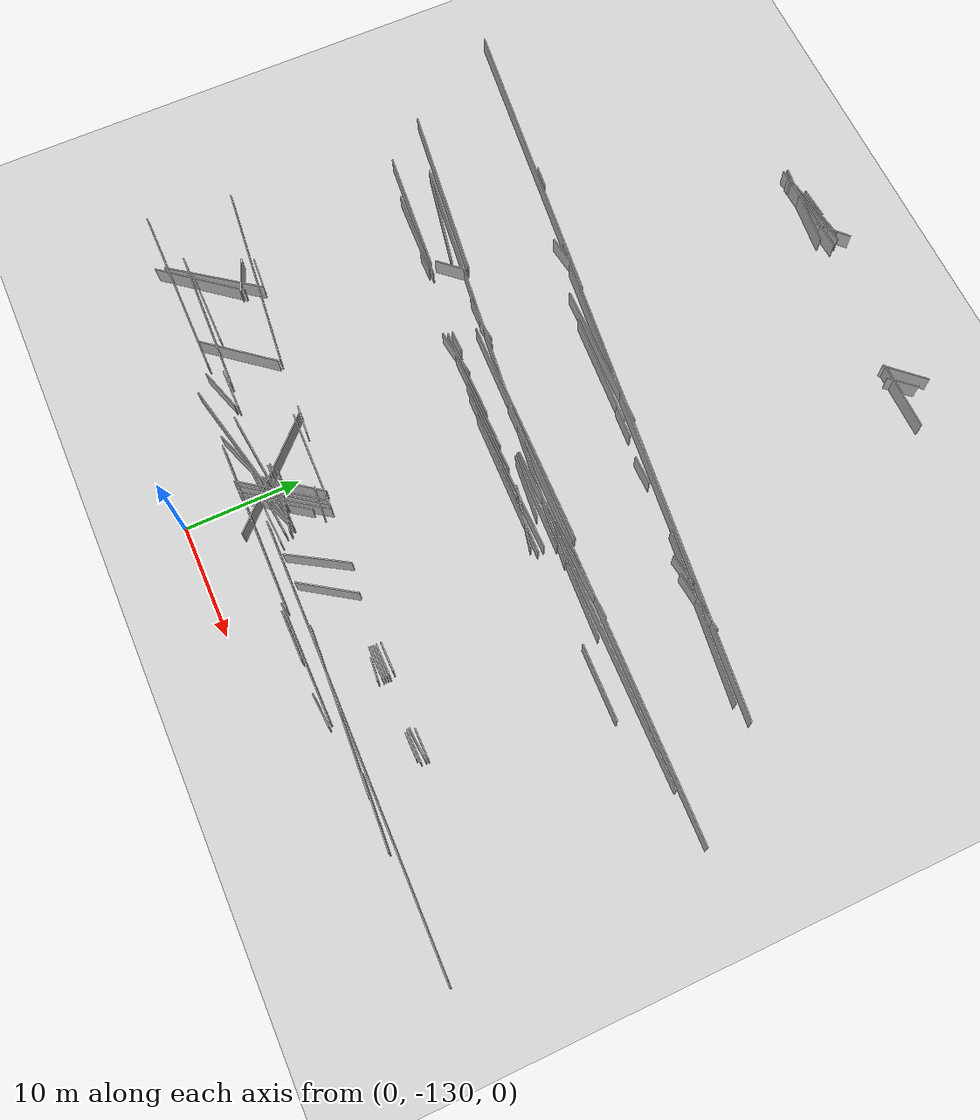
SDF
<sdf version="1.6">
 <world name="slam_world">
  <model name="ground_plane">
   <static>true</static>
   <link name="link">
    <collision name="collision">
     <geometry><plane><normal>0 0 1</normal><size>100 100</size></plane></geometry>
    </collision>
    <visual name="visual">
     <geometry><plane><normal>0 0 1</normal><size>100 100</size></plane></geometry>
     <material>
      <ambient>0.8 0.8 0.8 1</ambient>
      <diffuse>0.8 0.8 0.8 1</diffuse>
      <specular>0.8 0.8 0.8 1</specular>
     </material>
    </visual>
   </link>
  </model>
  <model name="wall_9">
   <static>true</static>
   <pose>0.6999999999999993 -92.3 1.0 0 0 -0.015150355874771107</pose>
   <link name="link">
    <collision name="collision">
     <geometry><box><size>13.201515064567397 0.1 2.0</size></box></geometry>
    </collision>
    <visual name="visual">
     <geometry><box><size>13.201515064567397 0.1 2.0</size></box></geometry>
     <material><ambient>0.5 0.5 0.5 1</ambient><diffuse>0.7 0.7 0.7 1</diffuse></material>
    </visual>
   </link>
  </model>
  <model name="wall_28">
   <static>true</static>
   <pose>24.700000000000003 -94.9 1.0 0 0 -0.12102721980920472</pose>
   <link name="link">
    <collision name="collision">
     <geometry><box><size>14.909057649630318 0.1 2.0</size></box></geometry>
    </collision>
    <visual name="visual">
     <geometry><box><size>14.909057649630318 0.1 2.0</size></box></geometry>
     <material><ambient>0.5 0.5 0.5 1</ambient><diffuse>0.7 0.7 0.7 1</diffuse></material>
    </visual>
   </link>
  </model>
  <model name="wall_33">
   <static>true</static>
   <pose>21.200000000000003 -102.1 1.0 0 0 -0.03551805166373941</pose>
   <link name="link">
    <collision name="collision"><geometry><box><size>39.42486525024531 0.1 2.0</size></box></geometry></collision>
    <visual name="visual">
     <geometry><box><size>39.42486525024531 0.1 2.0</size></box></geometry>
     <material><ambient>0.5 0.5 0.5 1</ambient><diffuse>0.7 0.7 0.7 1</diffuse></material>
    </visual>
   </link>
  </model>
  <model name="wall_39">
   <static>true</static>
   <pose>1.8000000000000043 -92.89999999999999 1.0 0 0 -0.05875582271572212</pose>
   <link name="link">
    <collision name="collision">
     <geometry><box><size>10.217631819555844 0.1 2.0</size></box></geometry>
    </collision>
    <visual name="visual">
     <geometry><box><size>10.217631819555844 0.1 2.0</size></box></geometry>
     <material><ambient>0.5 0.5 0.5 1</ambient><diffuse>0.7 0.7 0.7 1</diffuse></material>
    </visual>
   </link>
  </model>
  <model name="wall_43">
   <static>true</static>
   <pose>-19.8 -89.5 1.0 0 0 -0.10749767402565427</pose>
   <link name="link">
    <collision name="collision"><geometry><box><size>27.96140196771257 0.1 2.0</size></box></geometry></collision>
    <visual name="visual">
     <geometry><box><size>27.96140196771257 0.1 2.0</size></box></geometry>
     <material><ambient>0.5 0.5 0.5 1</ambient><diffuse>0.7 0.7 0.7 1</diffuse></material>
    </visual>
   </link>
  </model>
  <model name="wall_47">
   <static>true</static>
   <pose>0.8999999999999986 -121.6 1.0 0 0 0.9272952180016119</pose>
   <link name="link">
    <collision name="collision"><geometry><box><size>7.999999999999992 0.1 2.0</size></box></geometry></collision>
    <visual name="visual">
     <geometry><box><size>7.999999999999992 0.1 2.0</size></box></geometry>
     <material><ambient>0.5 0.5 0.5 1</ambient><diffuse>0.7 0.7 0.7 1</diffuse></material>
    </visual>
   </link>
  </model>
  <model name="wall_55">
   <static>true</static>
   <pose>26.200000000000003 -104.69999999999999 1.0 0 0 -0.03029375991877556</pose>
   <link name="link">
    <collision name="collision"><geometry><box><size>6.603029607687665 0.1 2.0</size></box></geometry></collision>
    <visual name="visual">
     <geometry><box><size>6.603029607687665 0.1 2.0</size></box></geometry>
     <material><ambient>0.5 0.5 0.5 1</ambient><diffuse>0.7 0.7 0.7 1</diffuse></material>
    </visual>
   </link>
  </model>
  <model name="wall_63">
   <static>true</static>
   <pose>-12.599999999999998 -120.4 1.0 0 0 0.8831250707561676</pose>
   <link name="link">
    <collision name="collision"><geometry><box><size>7.247068372797383 0.1 2.0</size></box></geometry></collision>
    <visual name="visual">
     <geometry><box><size>7.247068372797383 0.1 2.0</size></box></geometry>
     <material><ambient>0.5 0.5 0.5 1</ambient><diffuse>0.7 0.7 0.7 1</diffuse></material>
    </visual>
   </link>
  </model>
  <model name="wall_66">
   <static>true</static>
   <pose>23.6 -94.7 1.0 0 0 0.11065722117389477</pose>
   <link name="link">
    <collision name="collision"><geometry><box><size>5.433231082882441 0.1 2.0</size></box></geometry></collision>
    <visual name="visual">
     <geometry><box><size>5.433231082882441 0.1 2.0</size></box></geometry>
     <material><ambient>0.5 0.5 0.5 1</ambient><diffuse>0.7 0.7 0.7 1</diffuse></material>
    </visual>
   </link>
  </model>
  <model name="wall_84">
   <static>true</static>
   <pose>2.8000000000000007 -124.69999999999999 1.0 0 0 -0.012986282920172669</pose>
   <link name="link">
    <collision name="collision">
     <geometry><box><size>15.401298646542763 0.1 2.0</size></box></geometry>
    </collision>
    <visual name="visual">
     <geometry><box><size>15.401298646542763 0.1 2.0</size></box></geometry>
     <material><ambient>0.5 0.5 0.5 1</ambient><diffuse>0.7 0.7 0.7 1</diffuse></material>
    </visual>
   </link>
  </model>
  <model name="wall_89">
   <static>true</static>
   <pose>7.800000000000004 -92.7 1.0 0 0 -0.10391877869129144</pose>
   <link name="link">
    <collision name="collision"><geometry><box><size>32.77682107831692 0.1 2.0</size></box></geometry></collision>
    <visual name="visual">
     <geometry><box><size>32.77682107831692 0.1 2.0</size></box></geometry>
     <material><ambient>0.5 0.5 0.5 1</ambient><diffuse>0.7 0.7 0.7 1</diffuse></material>
    </visual>
   </link>
  </model>
  <model name="wall_122">
   <static>true</static>
   <pose>6.799999999999997 -104.0 1.0 0 0 0.0</pose>
   <link name="link">
    <collision name="collision"><geometry><box><size>15.0 0.1 2.0</size></box></geometry></collision>
    <visual name="visual">
     <geometry><box><size>15.0 0.1 2.0</size></box></geometry>
     <material><ambient>0.5 0.5 0.5 1</ambient><diffuse>0.7 0.7 0.7 1</diffuse></material>
    </visual>
   </link>
  </model>
  <model name="wall_124">
   <static>true</static>
   <pose>-2.900000000000002 -100.7 1.0 0 0 -0.11922354503950497</pose>
   <link name="link">
    <collision name="collision">
     <geometry><box><size>38.674539428414654 0.1 2.0</size></box></geometry>
    </collision>
    <visual name="visual">
     <geometry><box><size>38.674539428414654 0.1 2.0</size></box></geometry>
     <material><ambient>0.5 0.5 0.5 1</ambient><diffuse>0.7 0.7 0.7 1</diffuse></material>
    </visual>
   </link>
  </model>
  <model name="wall_137">
   <static>true</static>
   <pose>24.1 -102.7 1.0 0 0 -0.02499479361891991</pose>
   <link name="link">
    <collision name="collision">
     <geometry><box><size>24.007498828491084 0.1 2.0</size></box></geometry>
    </collision>
    <visual name="visual">
     <geometry><box><size>24.007498828491084 0.1 2.0</size></box></geometry>
     <material><ambient>0.5 0.5 0.5 1</ambient><diffuse>0.7 0.7 0.7 1</diffuse></material>
    </visual>
   </link>
  </model>
  <model name="wall_146">
   <static>true</static>
   <pose>-0.40000000000000213 -121.5 1.0 0 0 0.07677189126977366</pose>
   <link name="link">
    <collision name="collision"><geometry><box><size>2.60768096208106 0.1 2.0</size></box></geometry></collision>
    <visual name="visual">
     <geometry><box><size>2.60768096208106 0.1 2.0</size></box></geometry>
     <material><ambient>0.5 0.5 0.5 1</ambient><diffuse>0.7 0.7 0.7 1</diffuse></material>
    </visual>
   </link>
  </model>
  <model name="wall_153">
   <static>true</static>
   <pose>22.400000000000002 -123.9 1.0 0 0 -0.015383401780595368</pose>
   <link name="link">
    <collision name="collision"><geometry><box><size>39.00461511154802 0.1 2.0</size></box></geometry></collision>
    <visual name="visual">
     <geometry><box><size>39.00461511154802 0.1 2.0</size></box></geometry>
     <material><ambient>0.5 0.5 0.5 1</ambient><diffuse>0.7 0.7 0.7 1</diffuse></material>
    </visual>
   </link>
  </model>
  <model name="wall_166">
   <static>true</static>
   <pose>-20.2 -119.80000000000001 1.0 0 0 0.9272952180016125</pose>
   <link name="link">
    <collision name="collision"><geometry><box><size>9.000000000000002 0.1 2.0</size></box></geometry></collision>
    <visual name="visual">
     <geometry><box><size>9.000000000000002 0.1 2.0</size></box></geometry>
     <material><ambient>0.5 0.5 0.5 1</ambient><diffuse>0.7 0.7 0.7 1</diffuse></material>
    </visual>
   </link>
  </model>
  <model name="wall_174">
   <static>true</static>
   <pose>-19.4 -117.6 1.0 0 0 -0.3805063771123657</pose>
   <link name="link">
    <collision name="collision">
     <geometry><box><size>3.2310988842807036 0.1 2.0</size></box></geometry>
    </collision>
    <visual name="visual">
     <geometry><box><size>3.2310988842807036 0.1 2.0</size></box></geometry>
     <material><ambient>0.5 0.5 0.5 1</ambient><diffuse>0.7 0.7 0.7 1</diffuse></material>
    </visual>
   </link>
  </model>
  <model name="wall_176">
   <static>true</static>
   <pose>10.300000000000004 -102.8 1.0 0 0 -0.04542327942157767</pose>
   <link name="link">
    <collision name="collision"><geometry><box><size>8.809086218218095 0.1 2.0</size></box></geometry></collision>
    <visual name="visual">
     <geometry><box><size>8.809086218218095 0.1 2.0</size></box></geometry>
     <material><ambient>0.5 0.5 0.5 1</ambient><diffuse>0.7 0.7 0.7 1</diffuse></material>
    </visual>
   </link>
  </model>
  <model name="wall_182">
   <static>true</static>
   <pose>19.400000000000006 -103.0 1.0 0 0 -0.057080782406265414</pose>
   <link name="link">
    <collision name="collision"><geometry><box><size>7.011419257183242 0.1 2.0</size></box></geometry></collision>
    <visual name="visual">
     <geometry><box><size>7.011419257183242 0.1 2.0</size></box></geometry>
     <material><ambient>0.5 0.5 0.5 1</ambient><diffuse>0.7 0.7 0.7 1</diffuse></material>
    </visual>
   </link>
  </model>
  <model name="wall_194">
   <static>true</static>
   <pose>-20.4 -123.2 1.0 0 0 0.0</pose>
   <link name="link">
    <collision name="collision"><geometry><box><size>15.8 0.1 2.0</size></box></geometry></collision>
    <visual name="visual">
     <geometry><box><size>15.8 0.1 2.0</size></box></geometry>
     <material><ambient>0.5 0.5 0.5 1</ambient><diffuse>0.7 0.7 0.7 1</diffuse></material>
    </visual>
   </link>
  </model>
  <model name="wall_206">
   <static>true</static>
   <pose>17.5 -119.4 1.0 0 0 0.0</pose>
   <link name="link">
    <collision name="collision">
     <geometry><box><size>2.8000000000000114 0.1 2.0</size></box></geometry>
    </collision>
    <visual name="visual">
     <geometry><box><size>2.8000000000000114 0.1 2.0</size></box></geometry>
     <material><ambient>0.5 0.5 0.5 1</ambient><diffuse>0.7 0.7 0.7 1</diffuse></material>
    </visual>
   </link>
  </model>
  <model name="wall_207">
   <static>true</static>
   <pose>-9.5 -122.2 1.0 0 0 0.0</pose>
   <link name="link">
    <collision name="collision">
     <geometry><box><size>3.5999999999999943 0.1 2.0</size></box></geometry>
    </collision>
    <visual name="visual">
     <geometry><box><size>3.5999999999999943 0.1 2.0</size></box></geometry>
     <material><ambient>0.5 0.5 0.5 1</ambient><diffuse>0.7 0.7 0.7 1</diffuse></material>
    </visual>
   </link>
  </model>
  <model name="wall_223">
   <static>true</static>
   <pose>24.800000000000004 -119.2 1.0 0 0 0.0</pose>
   <link name="link">
    <collision name="collision">
     <geometry><box><size>2.6000000000000085 0.1 2.0</size></box></geometry>
    </collision>
    <visual name="visual">
     <geometry><box><size>2.6000000000000085 0.1 2.0</size></box></geometry>
     <material><ambient>0.5 0.5 0.5 1</ambient><diffuse>0.7 0.7 0.7 1</diffuse></material>
    </visual>
   </link>
  </model>
  <model name="wall_268">
   <static>true</static>
   <pose>-10.0 -91.0 1.0 0 0 0.1526493283952623</pose>
   <link name="link">
    <collision name="collision">
     <geometry><box><size>2.6305892875931742 0.1 2.0</size></box></geometry>
    </collision>
    <visual name="visual">
     <geometry><box><size>2.6305892875931742 0.1 2.0</size></box></geometry>
     <material><ambient>0.5 0.5 0.5 1</ambient><diffuse>0.7 0.7 0.7 1</diffuse></material>
    </visual>
   </link>
  </model>
  <model name="wall_289">
   <static>true</static>
   <pose>-16.6 -121.8 1.0 0 0 -0.030759526070469667</pose>
   <link name="link">
    <collision name="collision">
     <geometry><box><size>13.006152390311287 0.1 2.0</size></box></geometry>
    </collision>
    <visual name="visual">
     <geometry><box><size>13.006152390311287 0.1 2.0</size></box></geometry>
     <material><ambient>0.5 0.5 0.5 1</ambient><diffuse>0.7 0.7 0.7 1</diffuse></material>
    </visual>
   </link>
  </model>
  <model name="wall_295">
   <static>true</static>
   <pose>-19.1 -116.1 1.0 0 0 -0.0713074647852914</pose>
   <link name="link">
    <collision name="collision"><geometry><box><size>2.807133769523637 0.1 2.0</size></box></geometry></collision>
    <visual name="visual">
     <geometry><box><size>2.807133769523637 0.1 2.0</size></box></geometry>
     <material><ambient>0.5 0.5 0.5 1</ambient><diffuse>0.7 0.7 0.7 1</diffuse></material>
    </visual>
   </link>
  </model>
  <model name="wall_308">
   <static>true</static>
   <pose>4.400000000000002 -101.4 1.0 0 0 -0.03807682558980325</pose>
   <link name="link">
    <collision name="collision"><geometry><box><size>21.01523257068549 0.1 2.0</size></box></geometry></collision>
    <visual name="visual">
     <geometry><box><size>21.01523257068549 0.1 2.0</size></box></geometry>
     <material><ambient>0.5 0.5 0.5 1</ambient><diffuse>0.7 0.7 0.7 1</diffuse></material>
    </visual>
   </link>
  </model>
  <model name="wall_316">
   <static>true</static>
   <pose>-4.399999999999999 -68.9 1.0 0 0 0.14189705460416394</pose>
   <link name="link">
    <collision name="collision">
     <geometry><box><size>7.0710678118654755 0.1 2.0</size></box></geometry>
    </collision>
    <visual name="visual">
     <geometry><box><size>7.0710678118654755 0.1 2.0</size></box></geometry>
     <material><ambient>0.5 0.5 0.5 1</ambient><diffuse>0.7 0.7 0.7 1</diffuse></material>
    </visual>
   </link>
  </model>
  <model name="wall_320">
   <static>true</static>
   <pose>17.4 -119.0 1.0 0 0 0.0</pose>
   <link name="link">
    <collision name="collision">
     <geometry><box><size>2.6000000000000085 0.1 2.0</size></box></geometry>
    </collision>
    <visual name="visual">
     <geometry><box><size>2.6000000000000085 0.1 2.0</size></box></geometry>
     <material><ambient>0.5 0.5 0.5 1</ambient><diffuse>0.7 0.7 0.7 1</diffuse></material>
    </visual>
   </link>
  </model>
  <model name="wall_339">
   <static>true</static>
   <pose>-4.400000000000002 -117.69999999999999 1.0 0 0 -0.07677189126977908</pose>
   <link name="link">
    <collision name="collision">
     <geometry><box><size>2.6076809620810613 0.1 2.0</size></box></geometry>
    </collision>
    <visual name="visual">
     <geometry><box><size>2.6076809620810613 0.1 2.0</size></box></geometry>
     <material><ambient>0.5 0.5 0.5 1</ambient><diffuse>0.7 0.7 0.7 1</diffuse></material>
    </visual>
   </link>
  </model>
  <model name="wall_348">
   <static>true</static>
   <pose>-2.099999999999998 -122.3 1.0 0 0 0.10379234045704282</pose>
   <link name="link">
    <collision name="collision"><geometry><box><size>9.651942809610924 0.1 2.0</size></box></geometry></collision>
    <visual name="visual">
     <geometry><box><size>9.651942809610924 0.1 2.0</size></box></geometry>
     <material><ambient>0.5 0.5 0.5 1</ambient><diffuse>0.7 0.7 0.7 1</diffuse></material>
    </visual>
   </link>
  </model>
  <model name="wall_370">
   <static>true</static>
   <pose>-4.699999999999999 -103.5 1.0 0 0 0.1355277139854995</pose>
   <link name="link">
    <collision name="collision"><geometry><box><size>4.440720662234901 0.1 2.0</size></box></geometry></collision>
    <visual name="visual">
     <geometry><box><size>4.440720662234901 0.1 2.0</size></box></geometry>
     <material><ambient>0.5 0.5 0.5 1</ambient><diffuse>0.7 0.7 0.7 1</diffuse></material>
    </visual>
   </link>
  </model>
  <model name="wall_372">
   <static>true</static>
   <pose>-1.7000000000000028 -123.0 1.0 0 0 0.33667481938672844</pose>
   <link name="link">
    <collision name="collision"><geometry><box><size>8.47584804016684 0.1 2.0</size></box></geometry></collision>
    <visual name="visual">
     <geometry><box><size>8.47584804016684 0.1 2.0</size></box></geometry>
     <material><ambient>0.5 0.5 0.5 1</ambient><diffuse>0.7 0.7 0.7 1</diffuse></material>
    </visual>
   </link>
  </model>
  <model name="wall_401">
   <static>true</static>
   <pose>-17.9 -99.30000000000001 1.0 0 0 -0.19321148384780568</pose>
   <link name="link">
    <collision name="collision"><geometry><box><size>9.374433316206375 0.1 2.0</size></box></geometry></collision>
    <visual name="visual">
     <geometry><box><size>9.374433316206375 0.1 2.0</size></box></geometry>
     <material><ambient>0.5 0.5 0.5 1</ambient><diffuse>0.7 0.7 0.7 1</diffuse></material>
    </visual>
   </link>
  </model>
  <model name="wall_408">
   <static>true</static>
   <pose>0.10000000000000142 -103.6 1.0 0 0 0.0</pose>
   <link name="link">
    <collision name="collision"><geometry><box><size>9.200000000000003 0.1 2.0</size></box></geometry></collision>
    <visual name="visual">
     <geometry><box><size>9.200000000000003 0.1 2.0</size></box></geometry>
     <material><ambient>0.5 0.5 0.5 1</ambient><diffuse>0.7 0.7 0.7 1</diffuse></material>
    </visual>
   </link>
  </model>
  <model name="wall_411">
   <static>true</static>
   <pose>10.200000000000003 -121.2 1.0 0 0 0.9723774333163601</pose>
   <link name="link">
    <collision name="collision"><geometry><box><size>5.325410782277744 0.1 2.0</size></box></geometry></collision>
    <visual name="visual">
     <geometry><box><size>5.325410782277744 0.1 2.0</size></box></geometry>
     <material><ambient>0.5 0.5 0.5 1</ambient><diffuse>0.7 0.7 0.7 1</diffuse></material>
    </visual>
   </link>
  </model>
  <model name="wall_415">
   <static>true</static>
   <pose>1.3000000000000007 -121.6 1.0 0 0 0.9272952180016112</pose>
   <link name="link">
    <collision name="collision"><geometry><box><size>7.999999999999996 0.1 2.0</size></box></geometry></collision>
    <visual name="visual">
     <geometry><box><size>7.999999999999996 0.1 2.0</size></box></geometry>
     <material><ambient>0.5 0.5 0.5 1</ambient><diffuse>0.7 0.7 0.7 1</diffuse></material>
    </visual>
   </link>
  </model>
  <model name="wall_429">
   <static>true</static>
   <pose>-5.300000000000001 -69.4 1.0 0 0 -0.1048769387302335</pose>
   <link name="link">
    <collision name="collision"><geometry><box><size>7.641989269817121 0.1 2.0</size></box></geometry></collision>
    <visual name="visual">
     <geometry><box><size>7.641989269817121 0.1 2.0</size></box></geometry>
     <material><ambient>0.5 0.5 0.5 1</ambient><diffuse>0.7 0.7 0.7 1</diffuse></material>
    </visual>
   </link>
  </model>
  <model name="wall_438">
   <static>true</static>
   <pose>13.800000000000004 -102.2 1.0 0 0 0.025311049142848676</pose>
   <link name="link">
    <collision name="collision">
     <geometry><box><size>15.805062480104276 0.1 2.0</size></box></geometry>
    </collision>
    <visual name="visual">
     <geometry><box><size>15.805062480104276 0.1 2.0</size></box></geometry>
     <material><ambient>0.5 0.5 0.5 1</ambient><diffuse>0.7 0.7 0.7 1</diffuse></material>
    </visual>
   </link>
  </model>
  <model name="wall_439">
   <static>true</static>
   <pose>11.600000000000001 -93.8 1.0 0 0 0.0</pose>
   <link name="link">
    <collision name="collision">
     <geometry><box><size>2.6000000000000085 0.1 2.0</size></box></geometry>
    </collision>
    <visual name="visual">
     <geometry><box><size>2.6000000000000085 0.1 2.0</size></box></geometry>
     <material><ambient>0.5 0.5 0.5 1</ambient><diffuse>0.7 0.7 0.7 1</diffuse></material>
    </visual>
   </link>
  </model>
  <model name="wall_443">
   <static>true</static>
   <pose>-16.900000000000002 -102.0 1.0 0 0 -0.047583103276984076</pose>
   <link name="link">
    <collision name="collision"><geometry><box><size>8.409518416651455 0.1 2.0</size></box></geometry></collision>
    <visual name="visual">
     <geometry><box><size>8.409518416651455 0.1 2.0</size></box></geometry>
     <material><ambient>0.5 0.5 0.5 1</ambient><diffuse>0.7 0.7 0.7 1</diffuse></material>
    </visual>
   </link>
  </model>
  <model name="wall_449">
   <static>true</static>
   <pose>19.700000000000003 -124.0 1.0 0 0 -0.0554985052457176</pose>
   <link name="link">
    <collision name="collision">
     <geometry><box><size>14.422205101855964 0.1 2.0</size></box></geometry>
    </collision>
    <visual name="visual">
     <geometry><box><size>14.422205101855964 0.1 2.0</size></box></geometry>
     <material><ambient>0.5 0.5 0.5 1</ambient><diffuse>0.7 0.7 0.7 1</diffuse></material>
    </visual>
   </link>
  </model>
  <model name="wall_477">
   <static>true</static>
   <pose>3.1999999999999993 -123.30000000000001 1.0 0 0 0.05258306161094241</pose>
   <link name="link">
    <collision name="collision"><geometry><box><size>3.805259518088094 0.1 2.0</size></box></geometry></collision>
    <visual name="visual">
     <geometry><box><size>3.805259518088094 0.1 2.0</size></box></geometry>
     <material><ambient>0.5 0.5 0.5 1</ambient><diffuse>0.7 0.7 0.7 1</diffuse></material>
    </visual>
   </link>
  </model>
  <model name="wall_483">
   <static>true</static>
   <pose>-9.8 -123.0 1.0 0 0 0.3058788714048491</pose>
   <link name="link">
    <collision name="collision">
     <geometry><box><size>3.9849717690342557 0.1 2.0</size></box></geometry>
    </collision>
    <visual name="visual">
     <geometry><box><size>3.9849717690342557 0.1 2.0</size></box></geometry>
     <material><ambient>0.5 0.5 0.5 1</ambient><diffuse>0.7 0.7 0.7 1</diffuse></material>
    </visual>
   </link>
  </model>
  <model name="wall_492">
   <static>true</static>
   <pose>-18.9 -116.5 1.0 0 0 -0.10427161192765595</pose>
   <link name="link">
    <collision name="collision">
     <geometry><box><size>17.293929570806057 0.1 2.0</size></box></geometry>
    </collision>
    <visual name="visual">
     <geometry><box><size>17.293929570806057 0.1 2.0</size></box></geometry>
     <material><ambient>0.5 0.5 0.5 1</ambient><diffuse>0.7 0.7 0.7 1</diffuse></material>
    </visual>
   </link>
  </model>
  <model name="wall_497">
   <static>true</static>
   <pose>-5.700000000000003 -100.30000000000001 1.0 0 0 0.09966865249116344</pose>
   <link name="link">
    <collision name="collision">
     <geometry><box><size>2.0099751242241783 0.1 2.0</size></box></geometry>
    </collision>
    <visual name="visual">
     <geometry><box><size>2.0099751242241783 0.1 2.0</size></box></geometry>
     <material><ambient>0.5 0.5 0.5 1</ambient><diffuse>0.7 0.7 0.7 1</diffuse></material>
    </visual>
   </link>
  </model>
  <model name="wall_505">
   <static>true</static>
   <pose>-0.40000000000000213 -121.8 1.0 0 0 0.0</pose>
   <link name="link">
    <collision name="collision">
     <geometry><box><size>2.6000000000000014 0.1 2.0</size></box></geometry>
    </collision>
    <visual name="visual">
     <geometry><box><size>2.6000000000000014 0.1 2.0</size></box></geometry>
     <material><ambient>0.5 0.5 0.5 1</ambient><diffuse>0.7 0.7 0.7 1</diffuse></material>
    </visual>
   </link>
  </model>
  <model name="wall_508">
   <static>true</static>
   <pose>-20.0 -98.19999999999999 1.0 0 0 -0.12283523887789584</pose>
   <link name="link">
    <collision name="collision"><geometry><box><size>16.32298992219257 0.1 2.0</size></box></geometry></collision>
    <visual name="visual">
     <geometry><box><size>16.32298992219257 0.1 2.0</size></box></geometry>
     <material><ambient>0.5 0.5 0.5 1</ambient><diffuse>0.7 0.7 0.7 1</diffuse></material>
    </visual>
   </link>
  </model>
  <model name="wall_543">
   <static>true</static>
   <pose>-20.5 -121.0 1.0 0 0 0.8884797719201487</pose>
   <link name="link">
    <collision name="collision"><geometry><box><size>8.246211251235327 0.1 2.0</size></box></geometry></collision>
    <visual name="visual">
     <geometry><box><size>8.246211251235327 0.1 2.0</size></box></geometry>
     <material><ambient>0.5 0.5 0.5 1</ambient><diffuse>0.7 0.7 0.7 1</diffuse></material>
    </visual>
   </link>
  </model>
  <model name="wall_561">
   <static>true</static>
   <pose>20.700000000000003 -94.6 1.0 0 0 0.14189705460416038</pose>
   <link name="link">
    <collision name="collision"><geometry><box><size>2.8284271247462 0.1 2.0</size></box></geometry></collision>
    <visual name="visual">
     <geometry><box><size>2.8284271247462 0.1 2.0</size></box></geometry>
     <material><ambient>0.5 0.5 0.5 1</ambient><diffuse>0.7 0.7 0.7 1</diffuse></material>
    </visual>
   </link>
  </model>
  <model name="wall_562">
   <static>true</static>
   <pose>-19.3 -101.5 1.0 0 0 -0.08904958263449783</pose>
   <link name="link">
    <collision name="collision">
     <geometry><box><size>11.244554237496473 0.1 2.0</size></box></geometry>
    </collision>
    <visual name="visual">
     <geometry><box><size>11.244554237496473 0.1 2.0</size></box></geometry>
     <material><ambient>0.5 0.5 0.5 1</ambient><diffuse>0.7 0.7 0.7 1</diffuse></material>
    </visual>
   </link>
  </model>
  <model name="wall_566">
   <static>true</static>
   <pose>7.599999999999994 -121.0 1.0 0 0 1.0121970114513352</pose>
   <link name="link">
    <collision name="collision">
     <geometry><box><size>5.6603886792339715 0.1 2.0</size></box></geometry>
    </collision>
    <visual name="visual">
     <geometry><box><size>5.6603886792339715 0.1 2.0</size></box></geometry>
     <material><ambient>0.5 0.5 0.5 1</ambient><diffuse>0.7 0.7 0.7 1</diffuse></material>
    </visual>
   </link>
  </model>
  <model name="wall_571">
   <static>true</static>
   <pose>7.0 -93.3 1.0 0 0 -0.06656816377582947</pose>
   <link name="link">
    <collision name="collision">
     <geometry><box><size>3.0066592756745827 0.1 2.0</size></box></geometry>
    </collision>
    <visual name="visual">
     <geometry><box><size>3.0066592756745827 0.1 2.0</size></box></geometry>
     <material><ambient>0.5 0.5 0.5 1</ambient><diffuse>0.7 0.7 0.7 1</diffuse></material>
    </visual>
   </link>
  </model>
  <model name="wall_573">
   <static>true</static>
   <pose>11.600000000000001 -93.0 1.0 0 0 -0.10721065678060993</pose>
   <link name="link">
    <collision name="collision"><geometry><box><size>44.85755231842238 0.1 2.0</size></box></geometry></collision>
    <visual name="visual">
     <geometry><box><size>44.85755231842238 0.1 2.0</size></box></geometry>
     <material><ambient>0.5 0.5 0.5 1</ambient><diffuse>0.7 0.7 0.7 1</diffuse></material>
    </visual>
   </link>
  </model>
  <model name="wall_605">
   <static>true</static>
   <pose>24.700000000000003 -119.8 1.0 0 0 0.0</pose>
   <link name="link">
    <collision name="collision">
     <geometry><box><size>2.8000000000000114 0.1 2.0</size></box></geometry>
    </collision>
    <visual name="visual">
     <geometry><box><size>2.8000000000000114 0.1 2.0</size></box></geometry>
     <material><ambient>0.5 0.5 0.5 1</ambient><diffuse>0.7 0.7 0.7 1</diffuse></material>
    </visual>
   </link>
  </model>
  <model name="wall_610">
   <static>true</static>
   <pose>14.600000000000001 -70.8 1.0 0 0 0.0</pose>
   <link name="link">
    <collision name="collision"><geometry><box><size>6.200000000000003 0.1 2.0</size></box></geometry></collision>
    <visual name="visual">
     <geometry><box><size>6.200000000000003 0.1 2.0</size></box></geometry>
     <material><ambient>0.5 0.5 0.5 1</ambient><diffuse>0.7 0.7 0.7 1</diffuse></material>
    </visual>
   </link>
  </model>
  <model name="wall_613">
   <static>true</static>
   <pose>0.6000000000000014 -120.7 1.0 0 0 0.9209258773829494</pose>
   <link name="link">
    <collision name="collision"><geometry><box><size>6.280127387243031 0.1 2.0</size></box></geometry></collision>
    <visual name="visual">
     <geometry><box><size>6.280127387243031 0.1 2.0</size></box></geometry>
     <material><ambient>0.5 0.5 0.5 1</ambient><diffuse>0.7 0.7 0.7 1</diffuse></material>
    </visual>
   </link>
  </model>
  <model name="wall_622">
   <static>true</static>
   <pose>12.899999999999999 -69.5 1.0 0 0 0.8198672643969568</pose>
   <link name="link">
    <collision name="collision"><geometry><box><size>4.103656905736636 0.1 2.0</size></box></geometry></collision>
    <visual name="visual">
     <geometry><box><size>4.103656905736636 0.1 2.0</size></box></geometry>
     <material><ambient>0.5 0.5 0.5 1</ambient><diffuse>0.7 0.7 0.7 1</diffuse></material>
    </visual>
   </link>
  </model>
  <model name="wall_627">
   <static>true</static>
   <pose>24.6 -120.0 1.0 0 0 0.0</pose>
   <link name="link">
    <collision name="collision"><geometry><box><size>2.200000000000003 0.1 2.0</size></box></geometry></collision>
    <visual name="visual">
     <geometry><box><size>2.200000000000003 0.1 2.0</size></box></geometry>
     <material><ambient>0.5 0.5 0.5 1</ambient><diffuse>0.7 0.7 0.7 1</diffuse></material>
    </visual>
   </link>
  </model>
  <model name="wall_628">
   <static>true</static>
   <pose>-2.6000000000000014 -103.4 1.0 0 0 0.0</pose>
   <link name="link">
    <collision name="collision"><geometry><box><size>8.200000000000003 0.1 2.0</size></box></geometry></collision>
    <visual name="visual">
     <geometry><box><size>8.200000000000003 0.1 2.0</size></box></geometry>
     <material><ambient>0.5 0.5 0.5 1</ambient><diffuse>0.7 0.7 0.7 1</diffuse></material>
    </visual>
   </link>
  </model>
  <model name="wall_658">
   <static>true</static>
   <pose>-5.300000000000001 -68.8 1.0 0 0 0.15660187698201752</pose>
   <link name="link">
    <collision name="collision"><geometry><box><size>7.694153624668542 0.1 2.0</size></box></geometry></collision>
    <visual name="visual">
     <geometry><box><size>7.694153624668542 0.1 2.0</size></box></geometry>
     <material><ambient>0.5 0.5 0.5 1</ambient><diffuse>0.7 0.7 0.7 1</diffuse></material>
    </visual>
   </link>
  </model>
  <model name="wall_660">
   <static>true</static>
   <pose>1.8000000000000007 -121.7 1.0 0 0 -0.18311081726248418</pose>
   <link name="link">
    <collision name="collision"><geometry><box><size>5.491812087098391 0.1 2.0</size></box></geometry></collision>
    <visual name="visual">
     <geometry><box><size>5.491812087098391 0.1 2.0</size></box></geometry>
     <material><ambient>0.5 0.5 0.5 1</ambient><diffuse>0.7 0.7 0.7 1</diffuse></material>
    </visual>
   </link>
  </model>
  <model name="wall_665">
   <static>true</static>
   <pose>1.3999999999999986 -122.9 1.0 0 0 0.09647377518258822</pose>
   <link name="link">
    <collision name="collision"><geometry><box><size>6.228964600958979 0.1 2.0</size></box></geometry></collision>
    <visual name="visual">
     <geometry><box><size>6.228964600958979 0.1 2.0</size></box></geometry>
     <material><ambient>0.5 0.5 0.5 1</ambient><diffuse>0.7 0.7 0.7 1</diffuse></material>
    </visual>
   </link>
  </model>
  <model name="wall_680">
   <static>true</static>
   <pose>-14.100000000000001 -102.4 1.0 0 0 0.0</pose>
   <link name="link">
    <collision name="collision"><geometry><box><size>2.0 0.1 2.0</size></box></geometry></collision>
    <visual name="visual">
     <geometry><box><size>2.0 0.1 2.0</size></box></geometry>
     <material><ambient>0.5 0.5 0.5 1</ambient><diffuse>0.7 0.7 0.7 1</diffuse></material>
    </visual>
   </link>
  </model>
  <model name="wall_699">
   <static>true</static>
   <pose>13.600000000000001 -70.19999999999999 1.0 0 0 0.8379812250083908</pose>
   <link name="link">
    <collision name="collision"><geometry><box><size>2.69072480941474 0.1 2.0</size></box></geometry></collision>
    <visual name="visual">
     <geometry><box><size>2.69072480941474 0.1 2.0</size></box></geometry>
     <material><ambient>0.5 0.5 0.5 1</ambient><diffuse>0.7 0.7 0.7 1</diffuse></material>
    </visual>
   </link>
  </model>
  <model name="wall_750">
   <static>true</static>
   <pose>-1.0 -121.69999999999999 1.0 0 0 -0.7853981633974483</pose>
   <link name="link">
    <collision name="collision">
     <geometry><box><size>11.596551211459383 0.1 2.0</size></box></geometry>
    </collision>
    <visual name="visual">
     <geometry><box><size>11.596551211459383 0.1 2.0</size></box></geometry>
     <material><ambient>0.5 0.5 0.5 1</ambient><diffuse>0.7 0.7 0.7 1</diffuse></material>
    </visual>
   </link>
  </model>
  <model name="wall_759">
   <static>true</static>
   <pose>17.5 -119.6 1.0 0 0 0.0</pose>
   <link name="link">
    <collision name="collision">
     <geometry><box><size>2.8000000000000114 0.1 2.0</size></box></geometry>
    </collision>
    <visual name="visual">
     <geometry><box><size>2.8000000000000114 0.1 2.0</size></box></geometry>
     <material><ambient>0.5 0.5 0.5 1</ambient><diffuse>0.7 0.7 0.7 1</diffuse></material>
    </visual>
   </link>
  </model>
  <model name="wall_790">
   <static>true</static>
   <pose>-17.7 -121.4 1.0 0 0 0.0</pose>
   <link name="link">
    <collision name="collision"><geometry><box><size>6.800000000000004 0.1 2.0</size></box></geometry></collision>
    <visual name="visual">
     <geometry><box><size>6.800000000000004 0.1 2.0</size></box></geometry>
     <material><ambient>0.5 0.5 0.5 1</ambient><diffuse>0.7 0.7 0.7 1</diffuse></material>
    </visual>
   </link>
  </model>
  <model name="wall_800">
   <static>true</static>
   <pose>24.700000000000003 -119.5 1.0 0 0 0.071307464785286</pose>
   <link name="link">
    <collision name="collision">
     <geometry><box><size>2.8071337695236505 0.1 2.0</size></box></geometry>
    </collision>
    <visual name="visual">
     <geometry><box><size>2.8071337695236505 0.1 2.0</size></box></geometry>
     <material><ambient>0.5 0.5 0.5 1</ambient><diffuse>0.7 0.7 0.7 1</diffuse></material>
    </visual>
   </link>
  </model>
  <model name="wall_812">
   <static>true</static>
   <pose>1.8000000000000007 -121.6 1.0 0 0 0.9475969968608299</pose>
   <link name="link">
    <collision name="collision"><geometry><box><size>7.881624198095206 0.1 2.0</size></box></geometry></collision>
    <visual name="visual">
     <geometry><box><size>7.881624198095206 0.1 2.0</size></box></geometry>
     <material><ambient>0.5 0.5 0.5 1</ambient><diffuse>0.7 0.7 0.7 1</diffuse></material>
    </visual>
   </link>
  </model>
  <model name="wall_819">
   <static>true</static>
   <pose>-6.600000000000001 -100.30000000000001 1.0 0 0 -0.039978687123290606</pose>
   <link name="link">
    <collision name="collision">
     <geometry><box><size>5.0039984012787215 0.1 2.0</size></box></geometry>
    </collision>
    <visual name="visual">
     <geometry><box><size>5.0039984012787215 0.1 2.0</size></box></geometry>
     <material><ambient>0.5 0.5 0.5 1</ambient><diffuse>0.7 0.7 0.7 1</diffuse></material>
    </visual>
   </link>
  </model>
  <model name="wall_827">
   <static>true</static>
   <pose>6.300000000000001 -104.2 1.0 0 0 0.0</pose>
   <link name="link">
    <collision name="collision"><geometry><box><size>6.399999999999999 0.1 2.0</size></box></geometry></collision>
    <visual name="visual">
     <geometry><box><size>6.399999999999999 0.1 2.0</size></box></geometry>
     <material><ambient>0.5 0.5 0.5 1</ambient><diffuse>0.7 0.7 0.7 1</diffuse></material>
    </visual>
   </link>
  </model>
  <model name="wall_831">
   <static>true</static>
   <pose>11.200000000000003 -104.4 1.0 0 0 -0.21866894587394223</pose>
   <link name="link">
    <collision name="collision"><geometry><box><size>5.531726674375738 0.1 2.0</size></box></geometry></collision>
    <visual name="visual">
     <geometry><box><size>5.531726674375738 0.1 2.0</size></box></geometry>
     <material><ambient>0.5 0.5 0.5 1</ambient><diffuse>0.7 0.7 0.7 1</diffuse></material>
    </visual>
   </link>
  </model>
  <model name="wall_875">
   <static>true</static>
   <pose>-3.5 -123.3 1.0 0 0 0.21711131473490528</pose>
   <link name="link">
    <collision name="collision">
     <geometry><box><size>13.926952286842942 0.1 2.0</size></box></geometry>
    </collision>
    <visual name="visual">
     <geometry><box><size>13.926952286842942 0.1 2.0</size></box></geometry>
     <material><ambient>0.5 0.5 0.5 1</ambient><diffuse>0.7 0.7 0.7 1</diffuse></material>
    </visual>
   </link>
  </model>
  <model name="wall_878">
   <static>true</static>
   <pose>12.700000000000003 -125.2 1.0 0 0 0.0</pose>
   <link name="link">
    <collision name="collision"><geometry><box><size>4.400000000000006 0.1 2.0</size></box></geometry></collision>
    <visual name="visual">
     <geometry><box><size>4.400000000000006 0.1 2.0</size></box></geometry>
     <material><ambient>0.5 0.5 0.5 1</ambient><diffuse>0.7 0.7 0.7 1</diffuse></material>
    </visual>
   </link>
  </model>
  <model name="wall_883">
   <static>true</static>
   <pose>3.0 -119.1 1.0 0 0 -0.07677189126977929</pose>
   <link name="link">
    <collision name="collision"><geometry><box><size>2.607680962081054 0.1 2.0</size></box></geometry></collision>
    <visual name="visual">
     <geometry><box><size>2.607680962081054 0.1 2.0</size></box></geometry>
     <material><ambient>0.5 0.5 0.5 1</ambient><diffuse>0.7 0.7 0.7 1</diffuse></material>
    </visual>
   </link>
  </model>
  <model name="wall_903">
   <static>true</static>
   <pose>17.5 -119.8 1.0 0 0 0.0</pose>
   <link name="link">
    <collision name="collision">
     <geometry><box><size>2.8000000000000114 0.1 2.0</size></box></geometry>
    </collision>
    <visual name="visual">
     <geometry><box><size>2.8000000000000114 0.1 2.0</size></box></geometry>
     <material><ambient>0.5 0.5 0.5 1</ambient><diffuse>0.7 0.7 0.7 1</diffuse></material>
    </visual>
   </link>
  </model>
  <model name="wall_909">
   <static>true</static>
   <pose>28.1 -124.4 1.0 0 0 -0.0624188099959561</pose>
   <link name="link">
    <collision name="collision">
     <geometry><box><size>6.4124878167525505 0.1 2.0</size></box></geometry>
    </collision>
    <visual name="visual">
     <geometry><box><size>6.4124878167525505 0.1 2.0</size></box></geometry>
     <material><ambient>0.5 0.5 0.5 1</ambient><diffuse>0.7 0.7 0.7 1</diffuse></material>
    </visual>
   </link>
  </model>
  <model name="wall_912">
   <static>true</static>
   <pose>17.5 -120.0 1.0 0 0 0.0</pose>
   <link name="link">
    <collision name="collision">
     <geometry><box><size>2.8000000000000114 0.1 2.0</size></box></geometry>
    </collision>
    <visual name="visual">
     <geometry><box><size>2.8000000000000114 0.1 2.0</size></box></geometry>
     <material><ambient>0.5 0.5 0.5 1</ambient><diffuse>0.7 0.7 0.7 1</diffuse></material>
    </visual>
   </link>
  </model>
  <model name="wall_921">
   <static>true</static>
   <pose>5.800000000000001 -101.2 1.0 0 0 -0.022468128585825784</pose>
   <link name="link">
    <collision name="collision"><geometry><box><size>17.80449381476486 0.1 2.0</size></box></geometry></collision>
    <visual name="visual">
     <geometry><box><size>17.80449381476486 0.1 2.0</size></box></geometry>
     <material><ambient>0.5 0.5 0.5 1</ambient><diffuse>0.7 0.7 0.7 1</diffuse></material>
    </visual>
   </link>
  </model>
  <model name="wall_928">
   <static>true</static>
   <pose>-12.700000000000003 -100.5 1.0 0 0 0.8329812666744292</pose>
   <link name="link">
    <collision name="collision">
     <geometry><box><size>2.9732137494636928 0.1 2.0</size></box></geometry>
    </collision>
    <visual name="visual">
     <geometry><box><size>2.9732137494636928 0.1 2.0</size></box></geometry>
     <material><ambient>0.5 0.5 0.5 1</ambient><diffuse>0.7 0.7 0.7 1</diffuse></material>
    </visual>
   </link>
  </model>
  <model name="wall_929">
   <static>true</static>
   <pose>7.899999999999999 -104.4 1.0 0 0 -0.03029375991877445</pose>
   <link name="link">
    <collision name="collision">
     <geometry><box><size>13.206059215375344 0.1 2.0</size></box></geometry>
    </collision>
    <visual name="visual">
     <geometry><box><size>13.206059215375344 0.1 2.0</size></box></geometry>
     <material><ambient>0.5 0.5 0.5 1</ambient><diffuse>0.7 0.7 0.7 1</diffuse></material>
    </visual>
   </link>
  </model>
  <model name="wall_950">
   <static>true</static>
   <pose>2.6000000000000014 -103.8 1.0 0 0 0.0</pose>
   <link name="link">
    <collision name="collision"><geometry><box><size>8.600000000000009 0.1 2.0</size></box></geometry></collision>
    <visual name="visual">
     <geometry><box><size>8.600000000000009 0.1 2.0</size></box></geometry>
     <material><ambient>0.5 0.5 0.5 1</ambient><diffuse>0.7 0.7 0.7 1</diffuse></material>
    </visual>
   </link>
  </model>
  <model name="wall_975">
   <static>true</static>
   <pose>17.900000000000006 -120.30000000000001 1.0 0 0 -0.09966865249116344</pose>
   <link name="link">
    <collision name="collision">
     <geometry><box><size>2.0099751242241783 0.1 2.0</size></box></geometry>
    </collision>
    <visual name="visual">
     <geometry><box><size>2.0099751242241783 0.1 2.0</size></box></geometry>
     <material><ambient>0.5 0.5 0.5 1</ambient><diffuse>0.7 0.7 0.7 1</diffuse></material>
    </visual>
   </link>
  </model>
  <model name="wall_979">
   <static>true</static>
   <pose>8.899999999999999 -103.1 1.0 0 0 -0.10673567264913698</pose>
   <link name="link">
    <collision name="collision"><geometry><box><size>5.632051136131499 0.1 2.0</size></box></geometry></collision>
    <visual name="visual">
     <geometry><box><size>5.632051136131499 0.1 2.0</size></box></geometry>
     <material><ambient>0.5 0.5 0.5 1</ambient><diffuse>0.7 0.7 0.7 1</diffuse></material>
    </visual>
   </link>
  </model>
  <model name="wall_991">
   <static>true</static>
   <pose>-0.6000000000000014 -118.30000000000001 1.0 0 0 -0.022218565326719373</pose>
   <link name="link">
    <collision name="collision"><geometry><box><size>9.00222194794152 0.1 2.0</size></box></geometry></collision>
    <visual name="visual">
     <geometry><box><size>9.00222194794152 0.1 2.0</size></box></geometry>
     <material><ambient>0.5 0.5 0.5 1</ambient><diffuse>0.7 0.7 0.7 1</diffuse></material>
    </visual>
   </link>
  </model>
  <model name="wall_993">
   <static>true</static>
   <pose>-4.399999999999999 -69.2 1.0 0 0 0.051237167403419555</pose>
   <link name="link">
    <collision name="collision"><geometry><box><size>7.810249675906651 0.1 2.0</size></box></geometry></collision>
    <visual name="visual">
     <geometry><box><size>7.810249675906651 0.1 2.0</size></box></geometry>
     <material><ambient>0.5 0.5 0.5 1</ambient><diffuse>0.7 0.7 0.7 1</diffuse></material>
    </visual>
   </link>
  </model>
  <model name="wall_995">
   <static>true</static>
   <pose>-5.700000000000003 -103.0 1.0 0 0 0.0</pose>
   <link name="link">
    <collision name="collision"><geometry><box><size>2.0 0.1 2.0</size></box></geometry></collision>
    <visual name="visual">
     <geometry><box><size>2.0 0.1 2.0</size></box></geometry>
     <material><ambient>0.5 0.5 0.5 1</ambient><diffuse>0.7 0.7 0.7 1</diffuse></material>
    </visual>
   </link>
  </model>
  <model name="wall_1010">
   <static>true</static>
   <pose>1.6999999999999993 -122.3 1.0 0 0 0.9467732738181396</pose>
   <link name="link">
    <collision name="collision"><geometry><box><size>6.161168720299746 0.1 2.0</size></box></geometry></collision>
    <visual name="visual">
     <geometry><box><size>6.161168720299746 0.1 2.0</size></box></geometry>
     <material><ambient>0.5 0.5 0.5 1</ambient><diffuse>0.7 0.7 0.7 1</diffuse></material>
    </visual>
   </link>
  </model>
  <model name="wall_1017">
   <static>true</static>
   <pose>19.200000000000003 -125.30000000000001 1.0 0 0 0.06656816377582475</pose>
   <link name="link">
    <collision name="collision"><geometry><box><size>3.006659275674582 0.1 2.0</size></box></geometry></collision>
    <visual name="visual">
     <geometry><box><size>3.006659275674582 0.1 2.0</size></box></geometry>
     <material><ambient>0.5 0.5 0.5 1</ambient><diffuse>0.7 0.7 0.7 1</diffuse></material>
    </visual>
   </link>
  </model>
  <model name="wall_1055">
   <static>true</static>
   <pose>-17.700000000000003 -89.5 1.0 0 0 -0.0996686524911564</pose>
   <link name="link">
    <collision name="collision"><geometry><box><size>2.009975124224177 0.1 2.0</size></box></geometry></collision>
    <visual name="visual">
     <geometry><box><size>2.009975124224177 0.1 2.0</size></box></geometry>
     <material><ambient>0.5 0.5 0.5 1</ambient><diffuse>0.7 0.7 0.7 1</diffuse></material>
    </visual>
   </link>
  </model>
  <model name="wall_1056">
   <static>true</static>
   <pose>15.100000000000001 -125.0 1.0 0 0 0.0</pose>
   <link name="link">
    <collision name="collision">
     <geometry><box><size>10.399999999999991 0.1 2.0</size></box></geometry>
    </collision>
    <visual name="visual">
     <geometry><box><size>10.399999999999991 0.1 2.0</size></box></geometry>
     <material><ambient>0.5 0.5 0.5 1</ambient><diffuse>0.7 0.7 0.7 1</diffuse></material>
    </visual>
   </link>
  </model>
  <model name="wall_1086">
   <static>true</static>
   <pose>2.1999999999999993 -122.5 1.0 0 0 0.35299038782691144</pose>
   <link name="link">
    <collision name="collision"><geometry><box><size>4.049691346263323 0.1 2.0</size></box></geometry></collision>
    <visual name="visual">
     <geometry><box><size>4.049691346263323 0.1 2.0</size></box></geometry>
     <material><ambient>0.5 0.5 0.5 1</ambient><diffuse>0.7 0.7 0.7 1</diffuse></material>
    </visual>
   </link>
  </model>
  <model name="wall_1139">
   <static>true</static>
   <pose>-5.100000000000001 -68.5 1.0 0 0 0.07130746478528636</pose>
   <link name="link">
    <collision name="collision">
     <geometry><box><size>2.8071337695236362 0.1 2.0</size></box></geometry>
    </collision>
    <visual name="visual">
     <geometry><box><size>2.8071337695236362 0.1 2.0</size></box></geometry>
     <material><ambient>0.5 0.5 0.5 1</ambient><diffuse>0.7 0.7 0.7 1</diffuse></material>
    </visual>
   </link>
  </model>
  <model name="wall_1143">
   <static>true</static>
   <pose>-1.9000000000000021 -68.3 1.0 0 0 0.7419472680059216</pose>
   <link name="link">
    <collision name="collision"><geometry><box><size>3.255764119219952 0.1 2.0</size></box></geometry></collision>
    <visual name="visual">
     <geometry><box><size>3.255764119219952 0.1 2.0</size></box></geometry>
     <material><ambient>0.5 0.5 0.5 1</ambient><diffuse>0.7 0.7 0.7 1</diffuse></material>
    </visual>
   </link>
  </model>
 </world>
</sdf>
